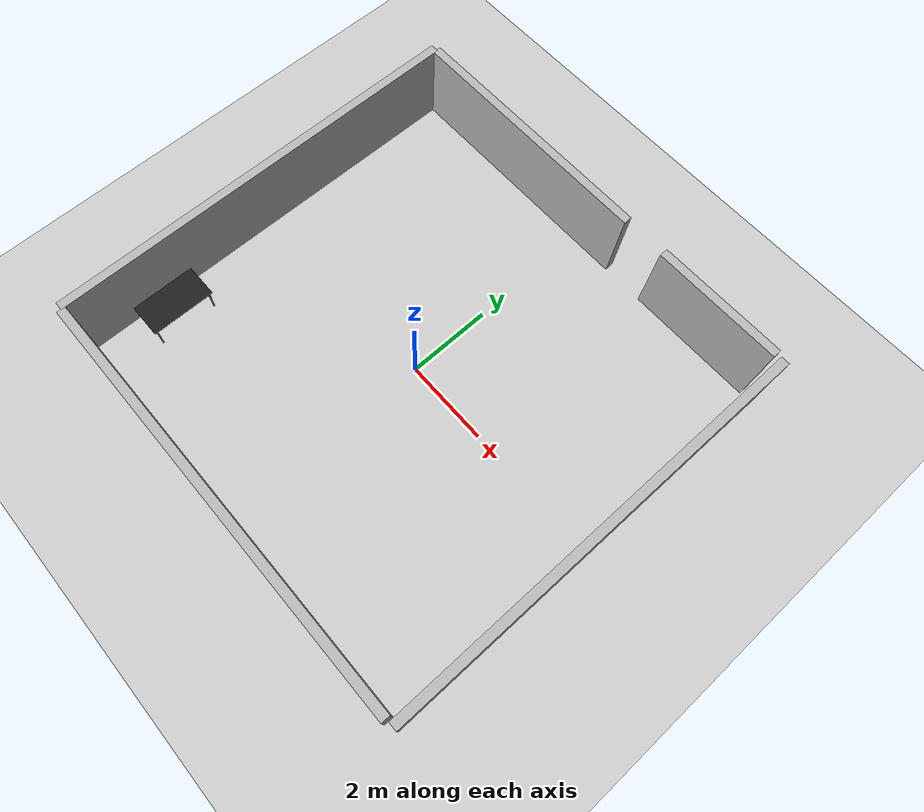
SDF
<sdf version="1.4">
 <world name="default">
  <physics type="ode">
   <gravity>0 0 -9.81</gravity>
   <ode>
    <solver><type>quick</type><iters>50</iters><sor>1.0</sor></solver>
    <constraints>
     <cfm>0.0</cfm>
     <erp>0.2</erp>
     <contact_max_correcting_vel>100.0</contact_max_correcting_vel>
     <contact_surface_layer>0.0</contact_surface_layer>
    </constraints>
   </ode>
   <real_time_update_rate>0</real_time_update_rate>
   <max_step_size>0.00050</max_step_size>
  </physics>
  <include><uri>model://sun</uri></include>
  <include><uri>model://ground_plane</uri></include>
  <model name="wall_left_model">
   <pose>0 -5 1 0 -0 0</pose>
   <static>true</static>
   <link name="wall_left_body">
    <inertial>
     <mass>1.0</mass>
     <inertia><ixx>1.0</ixx><ixy>0.0</ixy><ixz>0.0</ixz><iyy>1.0</iyy><iyz>0.0</iyz><izz>1.0</izz></inertia>
    </inertial>
    <collision name="collision"><geometry><box><size>10 0.2 2</size></box></geometry></collision>
    <visual name="visual"><geometry><box><size>10 0.2 2</size></box></geometry></visual>
   </link>
  </model>
  <model name="wall_top">
   <pose>-5.07231 0.004668 1 0 0 -1.57278</pose>
   <static>true</static>
   <link name="wall_top_body">
    <inertial>
     <mass>1.0</mass>
     <inertia><ixx>1.0</ixx><ixy>0.0</ixy><ixz>0.0</ixz><iyy>1.0</iyy><iyz>0.0</iyz><izz>1.0</izz></inertia>
    </inertial>
    <collision name="collision"><geometry><box><size>10 0.2 2</size></box></geometry></collision>
    <visual name="visual"><geometry><box><size>10 0.2 2</size></box></geometry></visual>
   </link>
  </model>
  <model name="wall_bottom">
   <pose>5.17527 0.011329 1 0 -0 1.56762</pose>
   <static>true</static>
   <link name="wall_bottom_body">
    <inertial>
     <mass>1.0</mass>
     <inertia><ixx>1.0</ixx><ixy>0.0</ixy><ixz>0.0</ixz><iyy>1.0</iyy><iyz>0.0</iyz><izz>1.0</izz></inertia>
    </inertial>
    <collision name="collision"><geometry><box><size>10 0.2 2</size></box></geometry></collision>
    <visual name="visual"><geometry><box><size>10 0.2 2</size></box></geometry></visual>
   </link>
  </model>
  <model name="wall_rightTop_model">
   <pose>-2 5 1 0 -0 0</pose>
   <static>true</static>
   <link name="wall_rightTop_body">
    <inertial>
     <mass>1.0</mass>
     <inertia><ixx>1.0</ixx><ixy>0.0</ixy><ixz>0.0</ixz><iyy>1.0</iyy><iyz>0.0</iyz><izz>1.0</izz></inertia>
    </inertial>
    <collision name="collision"><geometry><box><size>6 0.2 2</size></box></geometry></collision>
    <visual name="visual"><geometry><box><size>6 0.2 2</size></box></geometry></visual>
   </link>
  </model>
  <model name="wall_rightBottom_model">
   <pose>3.5 5 1 0 -0 0</pose>
   <static>true</static>
   <link name="wall_rightBottom_body">
    <inertial>
     <mass>1.0</mass>
     <inertia><ixx>1.0</ixx><ixy>0.0</ixy><ixz>0.0</ixz><iyy>1.0</iyy><iyz>0.0</iyz><izz>1.0</izz></inertia>
    </inertial>
    <collision name="collision"><geometry><box><size>3 0.2 2</size></box></geometry></collision>
    <visual name="visual"><geometry><box><size>3 0.2 2</size></box></geometry></visual>
   </link>
  </model>
  <include><uri>model://pal_kitchen_table</uri><pose>-4.86294 -3.81813 0 0 -0 0</pose></include>
 </world>
</sdf>

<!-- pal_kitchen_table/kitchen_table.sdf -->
<sdf version="1.4">
  <model name="pal_kitchen_table">
    <static>1</static>
    <link name="link">

      <collision name="colision1">
        <pose>0 0 0 0 0 0</pose>
        <geometry>
          <mesh>
            <uri>model://kitchen_table/meshes/kitchen_table.stl</uri>
	    <scale> 1 1 1 </scale>
          </mesh>
        </geometry>
        <surface>
          <bounce />
          <friction>
            <ode />
          </friction>
          <contact>
            <ode />
          </contact>
        </surface>
      </collision>

      <visual name="visual1">
        <pose>0 0 0 0 0 0</pose>
        <geometry>
          <mesh>
            <uri>model://kitchen_table/meshes/kitchen_table.stl</uri>
	    <scale> 1 1 1 </scale>
          </mesh>
        </geometry>
        <material>
          <script>
            <uri>file://media/materials/scripts/gazebo.material</uri>
            <name>Gazebo/FlatBlack</name>
          </script>
        </material>
      </visual>

      <velocity_decay>
        <linear>0.000000</linear>
        <angular>0.000000</angular>
      </velocity_decay>
      <self_collide>0</self_collide>
      <kinematic>0</kinematic>
      <gravity>1</gravity>
    </link>
  </model>
</sdf>
